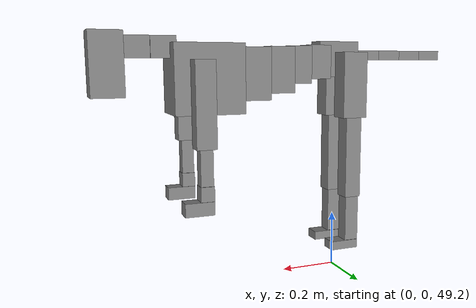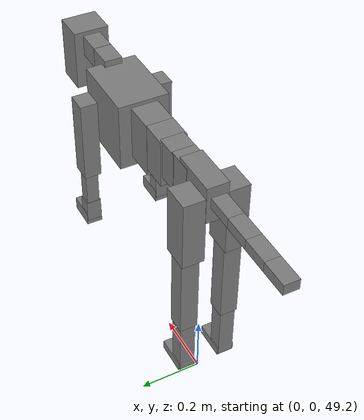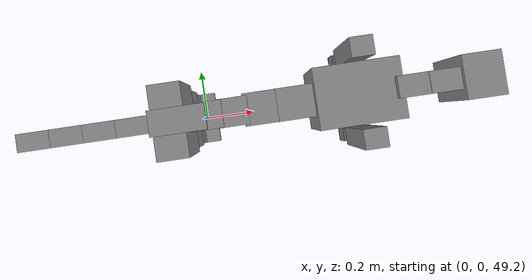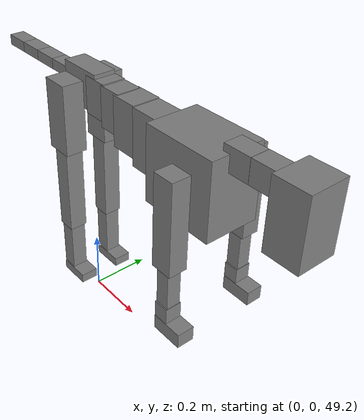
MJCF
<mujoco model="dog">

    <default>
        <joint armature="0.02" stiffness="1" damping="0.2" limited="true"/>
        <geom condim="3" friction="1 0.05 0.05" margin="0.01"/>
        <motor ctrllimited="true" ctrlrange="-1.0 1.0" forcelimited="true" gear="50"/>
    </default>

    <compiler inertiafromgeom="true" angle="radian"/>

    <option timestep="0.016" iterations="50" tolerance="1e-10" solver="Newton" jacobian="dense" cone="pyramidal"/>

    <size nconmax="20000" njmax="60000" nstack="5000000"/>
    <visual>
        <map force="0.1" zfar="30"/>
        <rgba haze="0.15 0.25 0.35 1"/>
        <quality shadowsize="2048"/>
        <global offwidth="800" offheight="800"/>
    </visual>

    <asset>
        <texture type="skybox" builtin="gradient" rgb1="0.3 0.5 0.7" rgb2="0 0 0" width="512" height="512"/>
        <texture name="texplane" type="2d" builtin="checker" rgb1=".2 .3 .4" rgb2=".1 0.15 0.2" width="512" height="512"
                 mark="cross" markrgb=".8 .8 .8"/>
        <texture name="texgeom" type="cube" builtin="flat" mark="cross" width="127" height="1278" rgb1="0.8 0.6 0.4"
                 rgb2="0.8 0.6 0.4" markrgb="1 1 1" random="0.01"/>

        <material name="matplane" reflectance="0.3" texture="texplane" texrepeat="1 1" texuniform="true"/>
        <material name="matgeom" texture="texgeom" texuniform="true" rgba="0.8 0.6 .4 1"/>
    </asset>

    <worldbody>
        <geom name="floor" pos="0 0 0" size="0 0 .25" type="plane" material="matplane" condim="3"/>

        <light directional="false" diffuse=".2 .2 .2" specular="0 0 0" pos="0 0 5" dir="0 0 -1" castshadow="false"/>
        <light mode="targetbodycom" target="torso" directional="false" diffuse=".8 .8 .8" specular="0.3 0.3 0.3"
               pos="0 0 4.0" dir="0 0 -1"/>

        <body name="root" pos="0 0 50">
            <freejoint name="root_1"/>
            <geom type="box" pos="0 0 -0.02" size="0.0774  0.0358  0.063" density="2030"/>

            <body name="spine1" pos="0.054 0 0">
                <joint name="spine1_y" axis="0 1 0" range="0 0.7" limited="true"/>
                <geom type="box" pos="0.02375 0 -0.03" size="0.04375  0.0375  0.05985" density="2030"/>

                <body name="spine2" pos="0.0612 0 0">
                    <joint name="spine2_y" axis="0 1 0" range="-0.15 0.15" limited="true"/>
                    <geom type="box" pos="0.03555  0  -0.04" size="0.04055  0.039  0.06615" density="2030"/>

                    <body name="spine3" pos="0.0730 0 0">
                        <joint name="spine3_y" axis="0 1 0" range="-0.15 0.15" limited="true"/>
                        <geom type="box" pos="0.03555  0  -0.057" size="0.04555  0.0445  0.081" density="2030"/>

                        <body name="spine4" pos="0.0780 0 0">
                            <joint name="spine4_y" axis="0 1 0" range="-0.15 0.15" limited="true"/>
                            <geom type="box" pos="0.05265  0  -0.07" size="0.05265  0.045  0.09135" density="2030"/>

                            <body name="torso" pos="0.1082 0 0">
                                <joint name="torso_y" axis="0 1 0" range="-0.15 0.15" limited="true"/>
                                <geom type="box" pos="0.11925  0  -0.085" size="0.11925  0.085  0.11745"
                                      density="2030"/>

                                <body name="neck1" pos="0.2160  0   0.0180">
                                    <joint name="neck1_y" axis="0 1 0" range="-1.2  -1" limited="true"/>
                                    <geom type="box" pos="0.0423  0  0" size="0.0423  0.03  0.036" density="2325"/>

                                    <body name="neck2" pos="0.0853  0  0">
                                        <joint name="neck2_y" axis="0 1 0" range="0.1  0" limited="true"/>
                                        <geom type="box" pos="0.0423  0  0" size="0.0423  0.03  0.036" density="2325"/>

                                        <body name="head" pos="0.0853  0  0">
                                            <joint name="head_y" axis="0 1 0" range="-0.3  -0.2" limited="true"/>
                                            <geom type="box" pos="0.0531  0  -0.055" size="0.0531  0.06  0.1044"
                                                  density="4030"/>

                                        </body>
                                    </body>
                                </body>

                                <body name="front_shoulder" pos="0.156  0   -0.0480">
                                    <joint name="front_shoulder_y" axis="0 1 0" range="-1 1.5" limited="true"/>
                                    <geom type="box" pos="0 0.13 -0.1153" size="0.0338  0.0289  0.1420" density="1158"/>
                                    <geom type="box" pos="0 -0.13 -0.1153" size="0.0338  0.0289  0.1420"
                                          density="1158"/>

                                    <body name="front_elbow" pos="0  0  -0.2306">
                                        <joint name="front_elbow_y" axis="0 1 0" range="-2 0" limited="true"/>
                                        <geom type="box" pos="0 0.13 -0.0797" size="0.0212  0.0217  0.0797"
                                              density="1081"/>
                                        <geom type="box" pos="0 -0.13 -0.0797" size="0.0212  0.0217  0.0797"
                                              density="1081"/>

                                        <body name="front_wrist" pos="0  0  -0.1595">
                                            <joint name="front_wrist_y" axis="0 1 0" range="-0.2 0" limited="true"/>
                                            <geom type="box" pos="0 0.13 -0.0257" size="0.0228  0.0253  0.0388"
                                                  density="1664"/>
                                            <geom type="box" pos="0 -0.13 -0.0257" size="0.0228  0.0253  0.0388"
                                                  density="1664"/>

                                            <body name="front_finger_end" pos="0  0  -0.0513">
                                                <joint name="front_finger_y" axis="0 1 0" range="-0.4 1"
                                                       limited="true"/>
                                                <geom type="box" pos="0.0265  0.13  -0.0074"
                                                      size="0.0486  0.0265  0.0224" density="1515"/>
                                                <geom type="box" pos="0.0265  -0.13  -0.0074"
                                                      size="0.0486  0.0265  0.0224" density="1515"/>

                                            </body>

                                        </body>
                                    </body>
                                </body>

                            </body>
                        </body>
                    </body>
                </body>
            </body>

            <body name="back_hip" pos="-0.03 0 -0.018">
                <joint name="back_hip_y" axis="0 1 0" range="-1.5 0.3" limited="true"/>
                <geom type="box" pos="0 0.07 -0.0936" size="0.0460  0.0361  0.1164" density="1154"/>
                <geom type="box" pos="0 -0.07 -0.0936" size="0.0460  0.0361  0.1164" density="1154"/>

                <body name="back_knee" pos="0  0  -0.1871">
                    <joint name="back_knee_y" axis="0 1 0" range="0 2.8" limited="true"/>
                    <geom type="box" pos="0 0.07 -0.1491" size="0.0299  0.0295  0.1647" density="1227"/>
                    <geom type="box" pos="0 -0.07 -0.1491" size="0.0299  0.0295  0.1647" density="1227"/>

                    <body name="back_ankle" pos="0  0  -0.2982">
                        <joint name="back_ankle_y" axis="0 1 0" range="-2.2 0" limited="true"/>
                        <geom type="box" pos="0 0.07 -0.0973" size="0.0255  0.0255  0.1086" density="1284"/>
                        <geom type="box" pos="0 -0.07 -0.0973" size="0.0255  0.0255  0.1086" density="1284"/>

                        <body name="back_toe_end" pos="0  0  -0.1946">
                            <joint name="back_toe_y" axis="0 1 0" range="-0.4 1" limited="true"/>
                            <geom type="box" pos="0.0287  0.07  -0.0006" size="0.0526  0.0287  0.0156" density="1515"/>
                            <geom type="box" pos="0.0287  -0.07  -0.0006" size="0.0526  0.0287  0.0156" density="1515"/>

                        </body>
                    </body>
                </body>
            </body>

            <body name="tail1" pos="-0.074 0 -0.006">
                <joint name="tail1_y" axis="0 1 0" range="-0.2 0.2" limited="true"/>
                <geom type="box" pos="-0.0536  0  0" size="0.045  0.025  0.0175" density="1587"/>

                <body name="tail2" pos="-0.09 0 0">
                    <joint name="tail2_y" axis="0 1 0" range="-0.2 0.2" limited="true"/>
                    <geom type="box" pos="-0.0536  0  0" size="0.045  0.025  0.0175" density="1587"/>

                    <body name="tail3" pos="-0.09 0 0">
                        <joint name="tail3_y" axis="0 1 0" range="-0.2 0.2" limited="true"/>
                        <geom type="box" pos="-0.0536  0  0" size="0.045  0.025  0.0175" density="1587"/>

                        <body name="tail4" pos="-0.09 0 0">
                            <joint name="tail4_y" axis="0 1 0" range="-0.2 0.2" limited="true"/>
                            <geom type="box" pos="-0.0536  0  0" size="0.045  0.025  0.0175" density="1587"/>

                        </body>
                    </body>
                </body>
            </body>
        </body>
    </worldbody>

    <actuator>
        <motor joint="spine1_y" forcerange="-150 150     "/>
        <motor joint="spine2_y" forcerange="-150 150     "/>
        <motor joint="spine3_y" forcerange="-150 150     "/>
        <motor joint="spine4_y" forcerange="-150 150     "/>
        <motor joint="torso_y" forcerange="-150 150     "/>
        <motor joint="neck1_y" forcerange="-100 100       "/>
        <motor joint="neck2_y" forcerange="-100 100       "/>
        <motor joint="head_y" forcerange="-150 150       "/>
        <motor joint="front_shoulder_y" forcerange="-141.78 150.79"/>
        <motor joint="front_elbow_y" forcerange="-116.41 141.42"/>
        <motor joint="front_wrist_y" forcerange="-77.66 124.57"/>
        <motor joint="front_finger_y" forcerange="-48.71 52.79"/>
        <motor joint="back_hip_y" forcerange="-314.40 367.08"/>
        <motor joint="back_knee_y" forcerange="-280.56 348.26"/>
        <motor joint="back_angle_y" forcerange="-167.64 140.68"/>
        <motor joint="back_toe_y" forcerange="-29.79 119.54"/>
        <motor joint="tail1_y" forcerange="-50 50     "/>
        <motor joint="tail2_y" forcerange="-50 50     "/>
        <motor joint="tail3_y" forcerange="-50 50     "/>
        <motor joint="tail4_y" forcerange="-50 50     "/>
    </actuator>
</mujoco>
